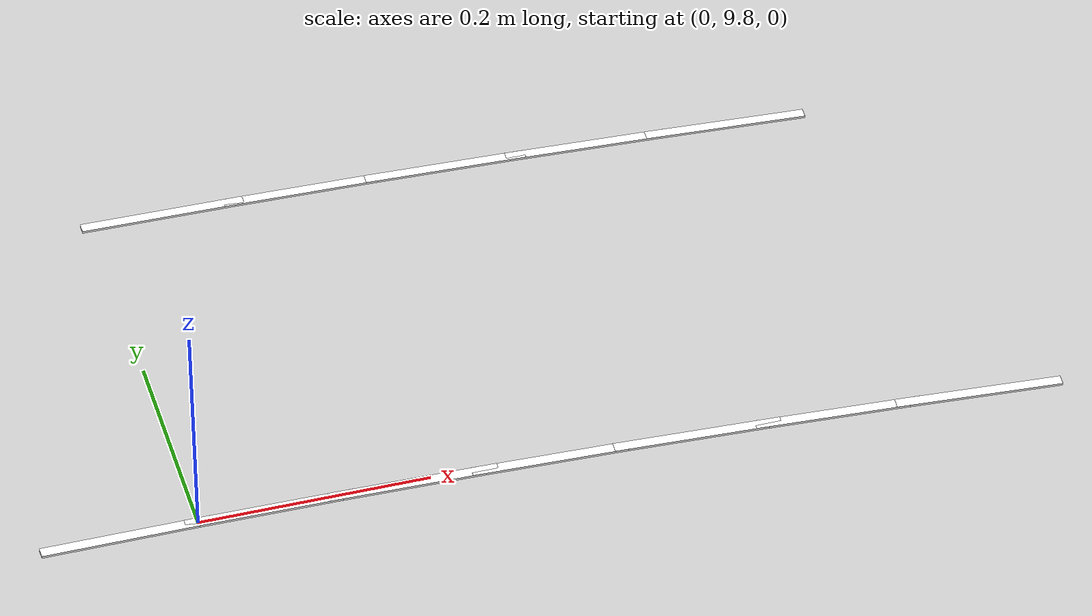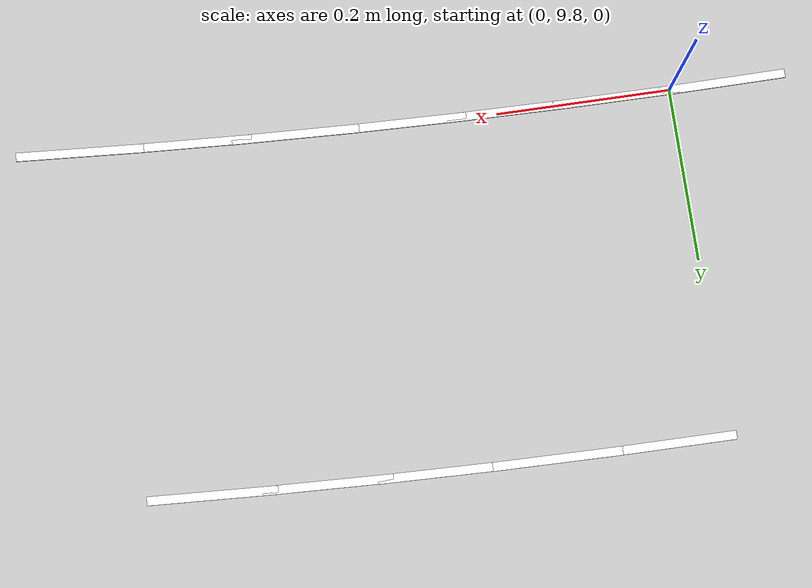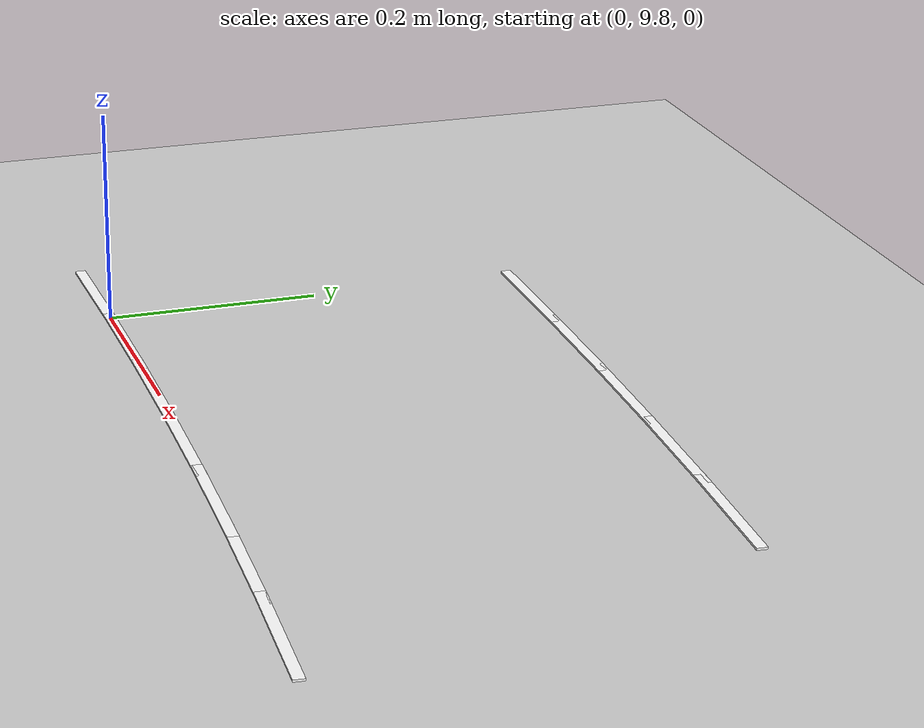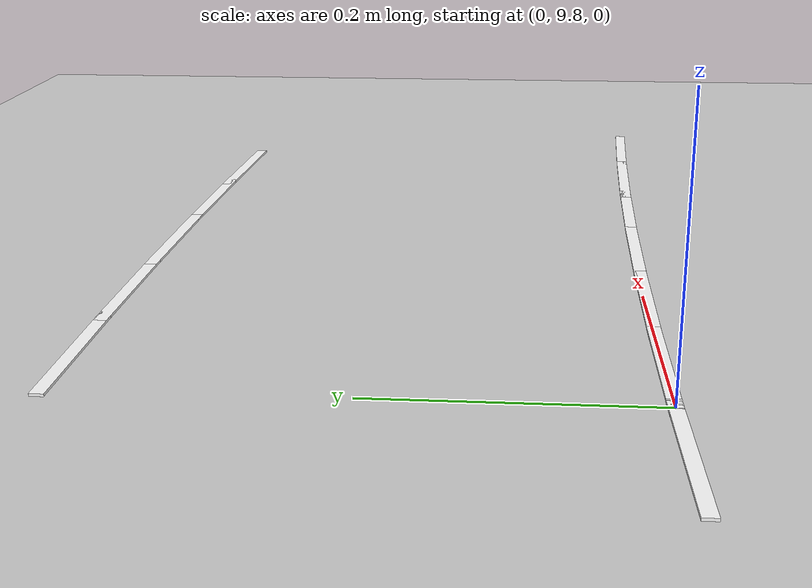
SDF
<sdf version="1.7">
 <world name="default">
  <model name="ground_plane">
   <static>1</static>
   <link name="link">
    <collision name="collision">
     <geometry><plane><normal>0 0 1</normal><size>100 100</size></plane></geometry>
     <surface>
      <contact><collide_bitmask>65535</collide_bitmask></contact>
      <friction><ode><mu>100</mu><mu2>50</mu2></ode></friction>
     </surface>
    </collision>
    <visual name="visual">
     <cast_shadows>0</cast_shadows>
     <geometry><plane><normal>0 0 1</normal><size>100 100</size></plane></geometry>
     <material>
      <script><uri>file://media/materials/scripts/gazebo.material</uri><name>Gazebo/Grey</name></script>
     </material>
    </visual>
   </link>
  </model>
  <model name="lane_line_left_119">
   <static>1</static>
   <link name="link">
    <pose>0 0 -0.004 0 -0 0</pose>
    <visual name="visual">
     <geometry><box><size>0.1457 0.01 0.01</size></box></geometry>
     <material><ambient>1 1 1 1</ambient><diffuse>1 1 1 1</diffuse></material>
    </visual>
    <collision name="collision"><geometry><box><size>0.1457 0.01 0.01</size></box></geometry></collision>
   </link>
   <pose>0.676775 9.77641 0 0 -0 3.07248</pose>
  </model>
  <model name="lane_line_left_120">
   <static>1</static>
   <link name="link">
    <pose>0 0 -0.004 0 -0 0</pose>
    <visual name="visual">
     <geometry><box><size>0.1457 0.01 0.01</size></box></geometry>
     <material><ambient>1 1 1 1</ambient><diffuse>1 1 1 1</diffuse></material>
    </visual>
    <collision name="collision"><geometry><box><size>0.1457 0.01 0.01</size></box></geometry></collision>
   </link>
   <pose>0.55387 9.78414 0 0 -0 3.08504</pose>
  </model>
  <model name="lane_line_right_120">
   <static>1</static>
   <link name="link">
    <pose>0 0 -0.004 0 -0 0</pose>
    <visual name="visual">
     <geometry><box><size>0.1457 0.01 0.01</size></box></geometry>
     <material><ambient>1 1 1 1</ambient><diffuse>1 1 1 1</diffuse></material>
    </visual>
    <collision name="collision"><geometry><box><size>0.1457 0.01 0.01</size></box></geometry></collision>
   </link>
   <pose>0.576478 10.1835 0 0 -0 3.08504</pose>
  </model>
  <model name="lane_line_left_121">
   <static>1</static>
   <link name="link">
    <pose>0 0 -0.004 0 -0 0</pose>
    <visual name="visual">
     <geometry><box><size>0.1457 0.01 0.01</size></box></geometry>
     <material><ambient>1 1 1 1</ambient><diffuse>1 1 1 1</diffuse></material>
    </visual>
    <collision name="collision"><geometry><box><size>0.1457 0.01 0.01</size></box></geometry></collision>
   </link>
   <pose>0.430879 9.79033 0 0 -0 3.09761</pose>
  </model>
  <model name="lane_line_right_121">
   <static>1</static>
   <link name="link">
    <pose>0 0 -0.004 0 -0 0</pose>
    <visual name="visual">
     <geometry><box><size>0.1457 0.01 0.01</size></box></geometry>
     <material><ambient>1 1 1 1</ambient><diffuse>1 1 1 1</diffuse></material>
    </visual>
    <collision name="collision"><geometry><box><size>0.1457 0.01 0.01</size></box></geometry></collision>
   </link>
   <pose>0.448466 10.1899 0 0 -0 3.09761</pose>
  </model>
  <model name="lane_line_left_122">
   <static>1</static>
   <link name="link">
    <pose>0 0 -0.004 0 -0 0</pose>
    <visual name="visual">
     <geometry><box><size>0.1457 0.01 0.01</size></box></geometry>
     <material><ambient>1 1 1 1</ambient><diffuse>1 1 1 1</diffuse></material>
    </visual>
    <collision name="collision"><geometry><box><size>0.1457 0.01 0.01</size></box></geometry></collision>
   </link>
   <pose>0.307819 9.79497 0 0 -0 3.11018</pose>
  </model>
  <model name="lane_line_right_122">
   <static>1</static>
   <link name="link">
    <pose>0 0 -0.004 0 -0 0</pose>
    <visual name="visual">
     <geometry><box><size>0.1457 0.01 0.01</size></box></geometry>
     <material><ambient>1 1 1 1</ambient><diffuse>1 1 1 1</diffuse></material>
    </visual>
    <collision name="collision"><geometry><box><size>0.1457 0.01 0.01</size></box></geometry></collision>
   </link>
   <pose>0.320384 10.1948 0 0 -0 3.11018</pose>
  </model>
  <model name="lane_line_left_123">
   <static>1</static>
   <link name="link">
    <pose>0 0 -0.004 0 -0 0</pose>
    <visual name="visual">
     <geometry><box><size>0.1457 0.01 0.01</size></box></geometry>
     <material><ambient>1 1 1 1</ambient><diffuse>1 1 1 1</diffuse></material>
    </visual>
    <collision name="collision"><geometry><box><size>0.1457 0.01 0.01</size></box></geometry></collision>
   </link>
   <pose>0.184711 9.79806 0 0 -0 3.12274</pose>
  </model>
  <model name="lane_line_right_123">
   <static>1</static>
   <link name="link">
    <pose>0 0 -0.004 0 -0 0</pose>
    <visual name="visual">
     <geometry><box><size>0.1457 0.01 0.01</size></box></geometry>
     <material><ambient>1 1 1 1</ambient><diffuse>1 1 1 1</diffuse></material>
    </visual>
    <collision name="collision"><geometry><box><size>0.1457 0.01 0.01</size></box></geometry></collision>
   </link>
   <pose>0.19225 10.198 0 0 -0 3.12274</pose>
  </model>
  <model name="lane_line_left_124">
   <static>1</static>
   <link name="link">
    <pose>0 0 -0.004 0 -0 0</pose>
    <visual name="visual">
     <geometry><box><size>0.1457 0.01 0.01</size></box></geometry>
     <material><ambient>1 1 1 1</ambient><diffuse>1 1 1 1</diffuse></material>
    </visual>
    <collision name="collision"><geometry><box><size>0.1457 0.01 0.01</size></box></geometry></collision>
   </link>
   <pose>0.061574 9.79961 0 0 -0 3.13531</pose>
  </model>
  <model name="lane_line_right_124">
   <static>1</static>
   <link name="link">
    <pose>0 0 -0.004 0 -0 0</pose>
    <visual name="visual">
     <geometry><box><size>0.1457 0.01 0.01</size></box></geometry>
     <material><ambient>1 1 1 1</ambient><diffuse>1 1 1 1</diffuse></material>
    </visual>
    <collision name="collision"><geometry><box><size>0.1457 0.01 0.01</size></box></geometry></collision>
   </link>
   <pose>0.064087 10.1996 0 0 -0 3.13531</pose>
  </model>
  <model name="lane_line_left_125">
   <static>1</static>
   <link name="link">
    <pose>0 0 -0.004 0 -0 0</pose>
    <visual name="visual">
     <geometry><box><size>0.1457 0.01 0.01</size></box></geometry>
     <material><ambient>1 1 1 1</ambient><diffuse>1 1 1 1</diffuse></material>
    </visual>
    <collision name="collision"><geometry><box><size>0.1457 0.01 0.01</size></box></geometry></collision>
   </link>
   <pose>-0.061574 9.79961 0 0 0 -3.13531</pose>
  </model>
 </world>
</sdf>
